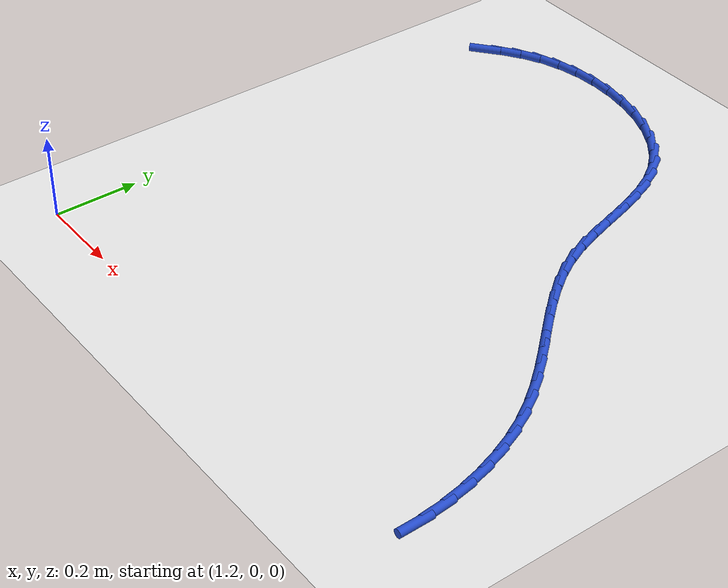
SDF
<sdf version="1.6">
 <world name="default">
  <model name="ground_plane">
   <static>1</static>
   <link name="link">
    <collision name="collision">
     <geometry><plane><normal>0 0 1</normal><size>100 100</size></plane></geometry>
     <surface><friction><ode><mu>100</mu><mu2>50</mu2></ode></friction></surface>
    </collision>
    <visual name="visual">
     <cast_shadows>0</cast_shadows>
     <geometry><plane><normal>0 0 1</normal><size>100 100</size></plane></geometry>
     <material>
      <script><uri>file://media/materials/scripts/gazebo.material</uri><name>Gazebo/WhiteGlow</name></script>
     </material>
    </visual>
   </link>
  </model>
  <model name="line">
   <link name="link_37">
    <pose>1.2338911615234232 1.1993699062213505 0.01 0 1.57 0.6713464659414836</pose>
    <collision name="collision">
     <geometry><cylinder><radius>0.01</radius><length>0.08</length></cylinder></geometry>
    </collision>
    <visual name="visual">
     <material>
      <script><name>Gazebo/Blue</name><uri>file://media/materials/scripts/gazebo.material</uri></script>
     </material>
     <geometry><cylinder><radius>0.01</radius><length>0.08</length></cylinder></geometry>
    </visual>
   </link>
   <link name="link_38">
    <pose>1.2751915792640687 1.2321809452098147 0.01 0 1.57 0.5737032867098244</pose>
    <collision name="collision">
     <geometry><cylinder><radius>0.01</radius><length>0.08</length></cylinder></geometry>
    </collision>
    <visual name="visual">
     <material>
      <script><name>Gazebo/Blue</name><uri>file://media/materials/scripts/gazebo.material</uri></script>
     </material>
     <geometry><cylinder><radius>0.01</radius><length>0.08</length></cylinder></geometry>
    </visual>
   </link>
   <link name="link_39">
    <pose>1.319332406450154 1.2607050017549721 0.01 0 1.57 0.44420014987154566</pose>
    <collision name="collision">
     <geometry><cylinder><radius>0.01</radius><length>0.08</length></cylinder></geometry>
    </collision>
    <visual name="visual">
     <material>
      <script><name>Gazebo/Blue</name><uri>file://media/materials/scripts/gazebo.material</uri></script>
     </material>
     <geometry><cylinder><radius>0.01</radius><length>0.08</length></cylinder></geometry>
    </visual>
   </link>
   <link name="link_40">
    <pose>1.3671389212579728 1.2834571629338003 0.01 0 1.57 0.30009435325279094</pose>
    <collision name="collision">
     <geometry><cylinder><radius>0.01</radius><length>0.08</length></cylinder></geometry>
    </collision>
    <visual name="visual">
     <material>
      <script><name>Gazebo/Blue</name><uri>file://media/materials/scripts/gazebo.material</uri></script>
     </material>
     <geometry><cylinder><radius>0.01</radius><length>0.08</length></cylinder></geometry>
    </visual>
   </link>
   <link name="link_41">
    <pose>1.4188285382098815 1.2994519791077745 0.01 0 1.57 0.16874691366268352</pose>
    <collision name="collision">
     <geometry><cylinder><radius>0.01</radius><length>0.08</length></cylinder></geometry>
    </collision>
    <visual name="visual">
     <material>
      <script><name>Gazebo/Blue</name><uri>file://media/materials/scripts/gazebo.material</uri></script>
     </material>
     <geometry><cylinder><radius>0.01</radius><length>0.08</length></cylinder></geometry>
    </visual>
   </link>
   <link name="link_42">
    <pose>1.4733558347454327 1.308741635892709 0.01 0 1.57 0.049208795846518584</pose>
    <collision name="collision">
     <geometry><cylinder><radius>0.01</radius><length>0.08</length></cylinder></geometry>
    </collision>
    <visual name="visual">
     <material>
      <script><name>Gazebo/Blue</name><uri>file://media/materials/scripts/gazebo.material</uri></script>
     </material>
     <geometry><cylinder><radius>0.01</radius><length>0.08</length></cylinder></geometry>
    </visual>
   </link>
   <link name="link_43">
    <pose>1.5295181134567455 1.3115075469169166 0.01 0 1.57 -0.06310980268239884</pose>
    <collision name="collision">
     <geometry><cylinder><radius>0.01</radius><length>0.08</length></cylinder></geometry>
    </collision>
    <visual name="visual">
     <material>
      <script><name>Gazebo/Blue</name><uri>file://media/materials/scripts/gazebo.material</uri></script>
     </material>
     <geometry><cylinder><radius>0.01</radius><length>0.08</length></cylinder></geometry>
    </visual>
   </link>
   <link name="link_44">
    <pose>1.586112676935939 1.30793112580871 0.01 0 1.57 -0.17269138543104987</pose>
    <collision name="collision">
     <geometry><cylinder><radius>0.01</radius><length>0.08</length></cylinder></geometry>
    </collision>
    <visual name="visual">
     <material>
      <script><name>Gazebo/Blue</name><uri>file://media/materials/scripts/gazebo.material</uri></script>
     </material>
     <geometry><cylinder><radius>0.01</radius><length>0.08</length></cylinder></geometry>
    </visual>
   </link>
   <link name="link_45">
    <pose>1.641936827775133 1.2981937861964032 0.01 0 1.57 -0.28397021775024467</pose>
    <collision name="collision">
     <geometry><cylinder><radius>0.01</radius><length>0.08</length></cylinder></geometry>
    </collision>
    <visual name="visual">
     <material>
      <script><name>Gazebo/Blue</name><uri>file://media/materials/scripts/gazebo.material</uri></script>
     </material>
     <geometry><cylinder><radius>0.01</radius><length>0.08</length></cylinder></geometry>
    </visual>
   </link>
   <link name="link_46">
    <pose>1.6957878685664447 1.282476941708308 0.01 0 1.57 -0.4015022293594167</pose>
    <collision name="collision">
     <geometry><cylinder><radius>0.01</radius><length>0.08</length></cylinder></geometry>
    </collision>
    <visual name="visual">
     <material>
      <script><name>Gazebo/Blue</name><uri>file://media/materials/scripts/gazebo.material</uri></script>
     </material>
     <geometry><cylinder><radius>0.01</radius><length>0.08</length></cylinder></geometry>
    </visual>
   </link>
   <link name="link_47">
    <pose>1.7464631019019936 1.2609620059727369 0.01 0 1.57 -0.5300895994952739</pose>
    <collision name="collision">
     <geometry><cylinder><radius>0.01</radius><length>0.08</length></cylinder></geometry>
    </collision>
    <visual name="visual">
     <material>
      <script><name>Gazebo/Blue</name><uri>file://media/materials/scripts/gazebo.material</uri></script>
     </material>
     <geometry><cylinder><radius>0.01</radius><length>0.08</length></cylinder></geometry>
    </visual>
   </link>
   <link name="link_48">
    <pose>1.792759830373899 1.2338303926180039 0.01 0 1.57 -0.6746579154839316</pose>
    <collision name="collision">
     <geometry><cylinder><radius>0.01</radius><length>0.08</length></cylinder></geometry>
    </collision>
    <visual name="visual">
     <material>
      <script><name>Gazebo/Blue</name><uri>file://media/materials/scripts/gazebo.material</uri></script>
     </material>
     <geometry><cylinder><radius>0.01</radius><length>0.08</length></cylinder></geometry>
    </visual>
   </link>
   <link name="link_49">
    <pose>1.8334753565742794 1.2012635152724211 0.01 0 1.57 -0.8392508939017052</pose>
    <collision name="collision">
     <geometry><cylinder><radius>0.01</radius><length>0.08</length></cylinder></geometry>
    </collision>
    <visual name="visual">
     <material>
      <script><name>Gazebo/Blue</name><uri>file://media/materials/scripts/gazebo.material</uri></script>
     </material>
     <geometry><cylinder><radius>0.01</radius><length>0.08</length></cylinder></geometry>
    </visual>
   </link>
   <link name="link_50">
    <pose>1.8674227503506156 1.163447738502064 0.01 0 1.57 -1.0054576230856267</pose>
    <collision name="collision">
     <geometry><cylinder><radius>0.01</radius><length>0.08</length></cylinder></geometry>
    </collision>
    <visual name="visual">
     <material>
      <script><name>Gazebo/Blue</name><uri>file://media/materials/scripts/gazebo.material</uri></script>
     </material>
     <geometry><cylinder><radius>0.01</radius><length>0.08</length></cylinder></geometry>
    </visual>
   </link>
   <link name="link_51">
    <pose>1.8944242270578622 1.1208862998154685 0.01 0 1.57 -1.1364373690017735</pose>
    <collision name="collision">
     <geometry><cylinder><radius>0.01</radius><length>0.08</length></cylinder></geometry>
    </collision>
    <visual name="visual">
     <material>
      <script><name>Gazebo/Blue</name><uri>file://media/materials/scripts/gazebo.material</uri></script>
     </material>
     <geometry><cylinder><radius>0.01</radius><length>0.08</length></cylinder></geometry>
    </visual>
   </link>
   <link name="link_52">
    <pose>1.9159035873387094 1.0745853364902984 0.01 0 1.57 -1.227284310028582</pose>
    <collision name="collision">
     <geometry><cylinder><radius>0.01</radius><length>0.08</length></cylinder></geometry>
    </collision>
    <visual name="visual">
     <material>
      <script><name>Gazebo/Blue</name><uri>file://media/materials/scripts/gazebo.material</uri></script>
     </material>
     <geometry><cylinder><radius>0.01</radius><length>0.08</length></cylinder></geometry>
    </visual>
   </link>
   <link name="link_53">
    <pose>1.9334268696665902 1.0255956486596944 0.01 0 1.57 -1.2803372340325765</pose>
    <collision name="collision">
     <geometry><cylinder><radius>0.01</radius><length>0.08</length></cylinder></geometry>
    </collision>
    <visual name="visual">
     <material>
      <script><name>Gazebo/Blue</name><uri>file://media/materials/scripts/gazebo.material</uri></script>
     </material>
     <geometry><cylinder><radius>0.01</radius><length>0.08</length></cylinder></geometry>
    </visual>
   </link>
   <link name="link_54">
    <pose>1.9485601125149417 0.9749680364567993 0.01 0 1.57 -1.298346906897571</pose>
    <collision name="collision">
     <geometry><cylinder><radius>0.01</radius><length>0.08</length></cylinder></geometry>
    </collision>
    <visual name="visual">
     <material>
      <script><name>Gazebo/Blue</name><uri>file://media/materials/scripts/gazebo.material</uri></script>
     </material>
     <geometry><cylinder><radius>0.01</radius><length>0.08</length></cylinder></geometry>
    </visual>
   </link>
   <link name="link_55">
    <pose>1.9628693543571967 0.9237533000147554 0.01 0 1.57 -1.2824886091502063</pose>
    <collision name="collision">
     <geometry><cylinder><radius>0.01</radius><length>0.08</length></cylinder></geometry>
    </collision>
    <visual name="visual">
     <material>
      <script><name>Gazebo/Blue</name><uri>file://media/materials/scripts/gazebo.material</uri></script>
     </material>
     <geometry><cylinder><radius>0.01</radius><length>0.08</length></cylinder></geometry>
    </visual>
   </link>
   <link name="link_56">
    <pose>1.9779206336667894 0.8730022394667043 0.01 0 1.57 -1.2318335838799885</pose>
    <collision name="collision">
     <geometry><cylinder><radius>0.01</radius><length>0.08</length></cylinder></geometry>
    </collision>
    <visual name="visual">
     <material>
      <script><name>Gazebo/Blue</name><uri>file://media/materials/scripts/gazebo.material</uri></script>
     </material>
     <geometry><cylinder><radius>0.01</radius><length>0.08</length></cylinder></geometry>
    </visual>
   </link>
   <link name="link_57">
    <pose>1.9952799889171555 0.8237656549457882 0.01 0 1.57 -1.1446937407474338</pose>
    <collision name="collision">
     <geometry><cylinder><radius>0.01</radius><length>0.08</length></cylinder></geometry>
    </collision>
    <visual name="visual">
     <material>
      <script><name>Gazebo/Blue</name><uri>file://media/materials/scripts/gazebo.material</uri></script>
     </material>
     <geometry><cylinder><radius>0.01</radius><length>0.08</length></cylinder></geometry>
    </visual>
   </link>
   <link name="link_58">
    <pose>2.0164763853886774 0.7770685309317367 0.01 0 1.57 -1.0445885596585376</pose>
    <collision name="collision">
     <geometry><cylinder><radius>0.01</radius><length>0.08</length></cylinder></geometry>
    </collision>
    <visual name="visual">
     <material>
      <script><name>Gazebo/Blue</name><uri>file://media/materials/scripts/gazebo.material</uri></script>
     </material>
     <geometry><cylinder><radius>0.01</radius><length>0.08</length></cylinder></geometry>
    </visual>
   </link>
   <link name="link_59">
    <pose>2.041964020131025 0.7331874447168143 0.01 0 1.57 -0.9621029545298629</pose>
    <collision name="collision">
     <geometry><cylinder><radius>0.01</radius><length>0.08</length></cylinder></geometry>
    </collision>
    <visual name="visual">
     <material>
      <script><name>Gazebo/Blue</name><uri>file://media/materials/scripts/gazebo.material</uri></script>
     </material>
     <geometry><cylinder><radius>0.01</radius><length>0.08</length></cylinder></geometry>
    </visual>
   </link>
   <link name="link_60">
    <pose>2.070982215114004 0.6915530040012731 0.01 0 1.57 -0.9003262605472824</pose>
    <collision name="collision">
     <geometry><cylinder><radius>0.01</radius><length>0.08</length></cylinder></geometry>
    </collision>
    <visual name="visual">
     <material>
      <script><name>Gazebo/Blue</name><uri>file://media/materials/scripts/gazebo.material</uri></script>
     </material>
     <geometry><cylinder><radius>0.01</radius><length>0.08</length></cylinder></geometry>
    </visual>
   </link>
   <link name="link_61">
    <pose>2.102705065784034 0.6515503964612879 0.01 0 1.57 -0.8594352487268361</pose>
    <collision name="collision">
     <geometry><cylinder><radius>0.01</radius><length>0.08</length></cylinder></geometry>
    </collision>
    <visual name="visual">
     <material>
      <script><name>Gazebo/Blue</name><uri>file://media/materials/scripts/gazebo.material</uri></script>
     </material>
     <geometry><cylinder><radius>0.01</radius><length>0.08</length></cylinder></geometry>
    </visual>
   </link>
   <link name="link_62">
    <pose>2.1363066675875353 0.612564809773034 0.01 0 1.57 -0.8389929711335402</pose>
    <collision name="collision">
     <geometry><cylinder><radius>0.01</radius><length>0.08</length></cylinder></geometry>
    </collision>
    <visual name="visual">
     <material>
      <script><name>Gazebo/Blue</name><uri>file://media/materials/scripts/gazebo.material</uri></script>
     </material>
     <geometry><cylinder><radius>0.01</radius><length>0.08</length></cylinder></geometry>
    </visual>
   </link>
   <link name="link_63">
    <pose>2.1709611159709272 0.5739814316126878 0.01 0 1.57 -0.838479782214066</pose>
    <collision name="collision">
     <geometry><cylinder><radius>0.01</radius><length>0.08</length></cylinder></geometry>
    </collision>
    <visual name="visual">
     <material>
      <script><name>Gazebo/Blue</name><uri>file://media/materials/scripts/gazebo.material</uri></script>
     </material>
     <geometry><cylinder><radius>0.01</radius><length>0.08</length></cylinder></geometry>
    </visual>
   </link>
   <link name="link_64">
    <pose>2.20584250638063 0.5351854496564243 0.01 0 1.57 -0.8575399914029248</pose>
    <collision name="collision">
     <geometry><cylinder><radius>0.01</radius><length>0.08</length></cylinder></geometry>
    </collision>
    <visual name="visual">
     <material>
      <script><name>Gazebo/Blue</name><uri>file://media/materials/scripts/gazebo.material</uri></script>
     </material>
     <geometry><cylinder><radius>0.01</radius><length>0.08</length></cylinder></geometry>
    </visual>
   </link>
   <link name="link_65">
    <pose>2.2401249342630627 0.4955620515804191 0.01 0 1.57 -0.8959802626697213</pose>
    <collision name="collision">
     <geometry><cylinder><radius>0.01</radius><length>0.08</length></cylinder></geometry>
    </collision>
    <visual name="visual">
     <material>
      <script><name>Gazebo/Blue</name><uri>file://media/materials/scripts/gazebo.material</uri></script>
     </material>
     <geometry><cylinder><radius>0.01</radius><length>0.08</length></cylinder></geometry>
    </visual>
   </link>
   <link name="link_66">
    <pose>2.272982495064645 0.4544964250608474 0.01 0 1.57 -0.9535493255962586</pose>
    <collision name="collision">
     <geometry><cylinder><radius>0.01</radius><length>0.08</length></cylinder></geometry>
    </collision>
    <visual name="visual">
     <material>
      <script><name>Gazebo/Blue</name><uri>file://media/materials/scripts/gazebo.material</uri></script>
     </material>
     <geometry><cylinder><radius>0.01</radius><length>0.08</length></cylinder></geometry>
    </visual>
   </link>
   <link name="link_67">
    <pose>2.303589284231798 0.4113737577738846 0.01 0 1.57 -1.0293351641206523</pose>
    <collision name="collision">
     <geometry><cylinder><radius>0.01</radius><length>0.08</length></cylinder></geometry>
    </collision>
    <visual name="visual">
     <material>
      <script><name>Gazebo/Blue</name><uri>file://media/materials/scripts/gazebo.material</uri></script>
     </material>
     <geometry><cylinder><radius>0.01</radius><length>0.08</length></cylinder></geometry>
    </visual>
   </link>
   <link name="link_68">
    <pose>2.331125530236421 0.36558818645795493 0.01 0 1.57 -1.1132000116904694</pose>
    <collision name="collision">
     <geometry><cylinder><radius>0.01</radius><length>0.08</length></cylinder></geometry>
    </collision>
    <visual name="visual">
     <material>
      <script><name>Gazebo/Blue</name><uri>file://media/materials/scripts/gazebo.material</uri></script>
     </material>
     <geometry><cylinder><radius>0.01</radius><length>0.08</length></cylinder></geometry>
    </visual>
   </link>
   <link name="link_69">
    <pose>2.3550689753679053 0.3169679679576361 0.01 0 1.57 -1.1928239296840712</pose>
    <collision name="collision">
     <geometry><cylinder><radius>0.01</radius><length>0.08</length></cylinder></geometry>
    </collision>
    <visual name="visual">
     <material>
      <script><name>Gazebo/Blue</name><uri>file://media/materials/scripts/gazebo.material</uri></script>
     </material>
     <geometry><cylinder><radius>0.01</radius><length>0.08</length></cylinder></geometry>
    </visual>
   </link>
   <link name="link_70">
    <pose>2.37532199601675 0.2659609679901375 0.01 0 1.57 -1.2684834164067018</pose>
    <collision name="collision">
     <geometry><cylinder><radius>0.01</radius><length>0.08</length></cylinder></geometry>
    </collision>
    <visual name="visual">
     <material>
      <script><name>Gazebo/Blue</name><uri>file://media/materials/scripts/gazebo.material</uri></script>
     </material>
     <geometry><cylinder><radius>0.01</radius><length>0.08</length></cylinder></geometry>
    </visual>
   </link>
   <link name="link_71">
    <pose>2.391819538722935 0.21306257731493594 0.01 0 1.57 -1.3414190692378956</pose>
    <collision name="collision">
     <geometry><cylinder><radius>0.01</radius><length>0.08</length></cylinder></geometry>
    </collision>
    <visual name="visual">
     <material>
      <script><name>Gazebo/Blue</name><uri>file://media/materials/scripts/gazebo.material</uri></script>
     </material>
     <geometry><cylinder><radius>0.01</radius><length>0.08</length></cylinder></geometry>
    </visual>
   </link>
   <link name="link_72">
    <pose>2.404496550026445 0.15876818669151 0.01 0 1.57 -1.4128437568094134</pose>
    <collision name="collision">
     <geometry><cylinder><radius>0.01</radius><length>0.08</length></cylinder></geometry>
    </collision>
    <visual name="visual">
     <material>
      <script><name>Gazebo/Blue</name><uri>file://media/materials/scripts/gazebo.material</uri></script>
     </material>
     <geometry><cylinder><radius>0.01</radius><length>0.08</length></cylinder></geometry>
    </visual>
   </link>
   <link name="link_73">
    <pose>2.4132879764672612 0.10357318687933671 0.01 0 1.57 -1.4839511261356757</pose>
    <collision name="collision">
     <geometry><cylinder><radius>0.01</radius><length>0.08</length></cylinder></geometry>
    </collision>
    <visual name="visual">
     <material>
      <script><name>Gazebo/Blue</name><uri>file://media/materials/scripts/gazebo.material</uri></script>
     </material>
     <geometry><cylinder><radius>0.01</radius><length>0.08</length></cylinder></geometry>
    </visual>
   </link>
   <link name="link_74">
    <pose>2.418128764585366 0.04797296863789368 0.01 0 1.57 -1.5559335111470167</pose>
    <collision name="collision">
     <geometry><cylinder><radius>0.01</radius><length>0.08</length></cylinder></geometry>
    </collision>
    <visual name="visual">
     <material>
      <script><name>Gazebo/Blue</name><uri>file://media/materials/scripts/gazebo.material</uri></script>
     </material>
     <geometry><cylinder><radius>0.01</radius><length>0.08</length></cylinder></geometry>
    </visual>
   </link>
  </model>
 </world>
</sdf>
